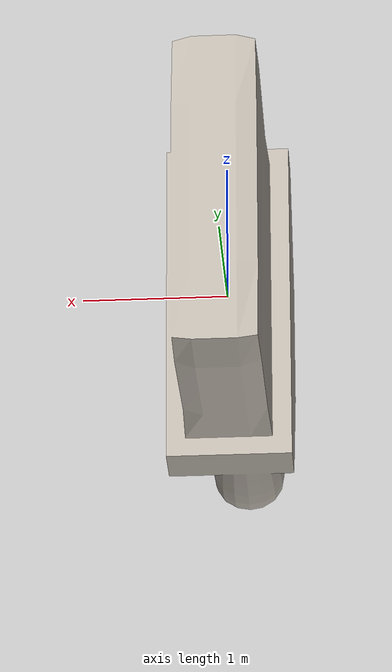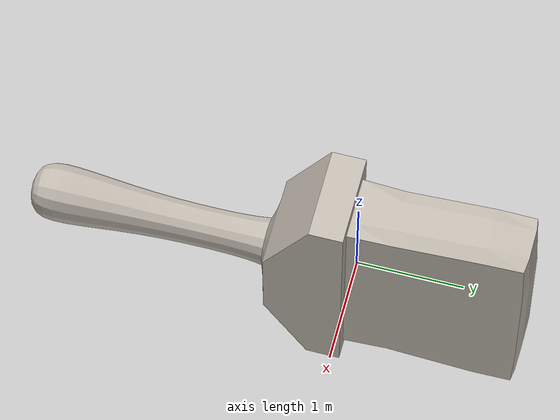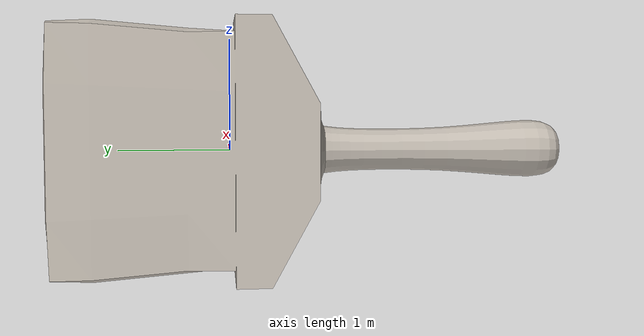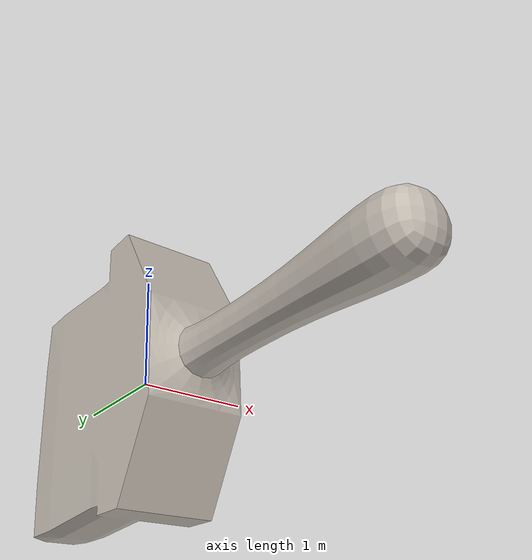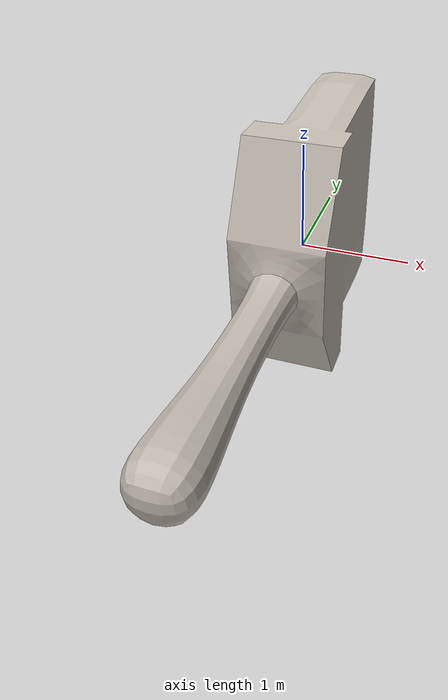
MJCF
<mujoco model="brush">
  <default>
    <default class="visual">
      <geom group="2" type="mesh" contype="0" conaffinity="0"/>
    </default>
    <default class="collision">
      <geom group="3" type="mesh"/>
    </default>
  </default>
  <asset>
    <texture type="2d" name="material_0" file="material_0.png"/>
    <material name="material_0" texture="material_0" specular="0.4000000000000001" shininess="0.001"/>
    <mesh file="brush.obj"/>
    <mesh file="brush_collision_0.obj"/>
    <mesh file="brush_collision_1.obj"/>
    <mesh file="brush_collision_2.obj"/>
    <mesh file="brush_collision_3.obj"/>
  </asset>
  <worldbody>
    <body name="brush">
      <geom material="material_0" mesh="brush" class="visual"/>
      <geom mesh="brush_collision_0" rgba="0.32667896552358233 0.5388072885325698 0.22580928888473373 1" class="collision"/>
      <geom mesh="brush_collision_1" rgba="0.8023832508085338 0.06368797311396301 0.11559524605243376 1" class="collision"/>
      <geom mesh="brush_collision_2" rgba="0.922264222351333 0.4330875405027115 0.7990789996892721 1" class="collision"/>
      <geom mesh="brush_collision_3" rgba="0.8578127262924262 0.6173195407215124 0.8280446161690121 1" class="collision"/>
    </body>
  </worldbody>
</mujoco>
